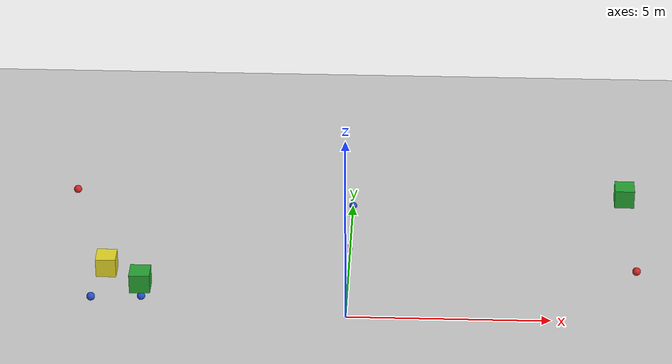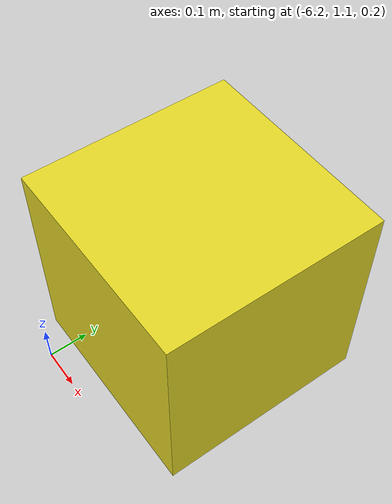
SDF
<sdf version="1.4">
 <world name="default">
  <include><uri>model://sun</uri></include>
  <include><uri>model://ground_plane</uri></include>
  <physics type="ode">
   <real_time_update_rate>1000.0</real_time_update_rate>
   <max_step_size>0.001</max_step_size>
   <real_time_factor>1</real_time_factor>
   <ode>
    <solver>
     <type>quick</type>
     <iters>150</iters>
     <precon_iters>0</precon_iters>
     <sor>1.400000</sor>
     <use_dynamic_moi_rescaling>1</use_dynamic_moi_rescaling>
    </solver>
    <constraints>
     <cfm>0.00001</cfm>
     <erp>0.2</erp>
     <contact_max_correcting_vel>2000.000000</contact_max_correcting_vel>
     <contact_surface_layer>0.01000</contact_surface_layer>
    </constraints>
   </ode>
  </physics>
  <scene><ambient>0.4 0.4 0.4 1</ambient><background>0.7 0.7 0.7 1</background><shadows>true</shadows></scene>
  <model name="red_ball_1">
   <pose>0 1.5 1.0 0 0 0</pose>
   <static>false</static>
   <link name="link">
    <collision name="collision"><geometry><sphere><radius>0.1</radius></sphere></geometry></collision>
    <visual name="visual">
     <geometry><sphere><radius>0.1</radius></sphere></geometry>
     <material>
      <script><name>Gazebo/Red</name><uri>file://media/materials/scripts/gazebo.material</uri></script>
     </material>
    </visual>
   </link>
  </model>
  <model name="red_ball_2">
   <pose>7 0 1.5 0 0 0</pose>
   <static>false</static>
   <link name="link">
    <collision name="collision"><geometry><sphere><radius>0.1</radius></sphere></geometry></collision>
    <visual name="visual">
     <geometry><sphere><radius>0.1</radius></sphere></geometry>
     <material>
      <script><name>Gazebo/Red</name><uri>file://media/materials/scripts/gazebo.material</uri></script>
     </material>
    </visual>
   </link>
  </model>
  <model name="red_ball_3">
   <pose>-7 4 1.0 0 0 0</pose>
   <static>false</static>
   <link name="link">
    <collision name="collision"><geometry><sphere><radius>0.1</radius></sphere></geometry></collision>
    <visual name="visual">
     <geometry><sphere><radius>0.1</radius></sphere></geometry>
     <material>
      <script><name>Gazebo/Red</name><uri>file://media/materials/scripts/gazebo.material</uri></script>
     </material>
    </visual>
   </link>
  </model>
  <model name="blue_ball_1">
   <pose>-6 -1.5 1.5 0 0 0</pose>
   <static>false</static>
   <link name="link">
    <collision name="collision"><geometry><sphere><radius>0.1</radius></sphere></geometry></collision>
    <visual name="visual">
     <geometry><sphere><radius>0.1</radius></sphere></geometry>
     <material>
      <script><name>Gazebo/Blue</name><uri>file://media/materials/scripts/gazebo.material</uri></script>
     </material>
    </visual>
   </link>
  </model>
  <model name="blue_ball_2">
   <pose>0 5.0 0 0 0 0</pose>
   <static>false</static>
   <link name="link">
    <collision name="collision"><geometry><sphere><radius>0.1</radius></sphere></geometry></collision>
    <visual name="visual">
     <geometry><sphere><radius>0.1</radius></sphere></geometry>
     <material>
      <script><name>Gazebo/Blue</name><uri>file://media/materials/scripts/gazebo.material</uri></script>
     </material>
    </visual>
   </link>
  </model>
  <model name="blue_ball_3">
   <pose>-5 0 0.5 0 0 0</pose>
   <static>false</static>
   <link name="link">
    <collision name="collision"><geometry><sphere><radius>0.1</radius></sphere></geometry></collision>
    <visual name="visual">
     <geometry><sphere><radius>0.1</radius></sphere></geometry>
     <material>
      <script><name>Gazebo/Blue</name><uri>file://media/materials/scripts/gazebo.material</uri></script>
     </material>
    </visual>
   </link>
  </model>
  <model name="green_box">
   <pose>7 5 0.5 0 0 0</pose>
   <static>false</static>
   <link name="link">
    <collision name="collision"><geometry><box><size>0.5 0.5 0.5</size></box></geometry></collision>
    <visual name="visual">
     <geometry><box><size>0.5 0.5 0.5</size></box></geometry>
     <material>
      <script><name>Gazebo/Green</name><uri>file://media/materials/scripts/gazebo.material</uri></script>
     </material>
    </visual>
   </link>
  </model>
  <model name="yellow_box">
   <pose>-6 1.4 0.5 0 0 0</pose>
   <static>false</static>
   <link name="link">
    <collision name="collision"><geometry><box><size>0.5 0.5 0.5</size></box></geometry></collision>
    <visual name="visual">
     <geometry><box><size>0.5 0.5 0.5</size></box></geometry>
     <material>
      <script><name>Gazebo/Yellow</name><uri>file://media/materials/scripts/gazebo.material</uri></script>
     </material>
    </visual>
   </link>
  </model>
  <model name="green_cube">
   <pose>-5 0 1.0 0 0 0</pose>
   <static>false</static>
   <link name="link">
    <collision name="collision"><geometry><box><size>0.5 0.5 0.5</size></box></geometry></collision>
    <visual name="visual">
     <geometry><box><size>0.5 0.5 0.5</size></box></geometry>
     <material>
      <script><name>Gazebo/Green</name><uri>file://media/materials/scripts/gazebo.material</uri></script>
     </material>
    </visual>
   </link>
  </model>
 </world>
</sdf>
